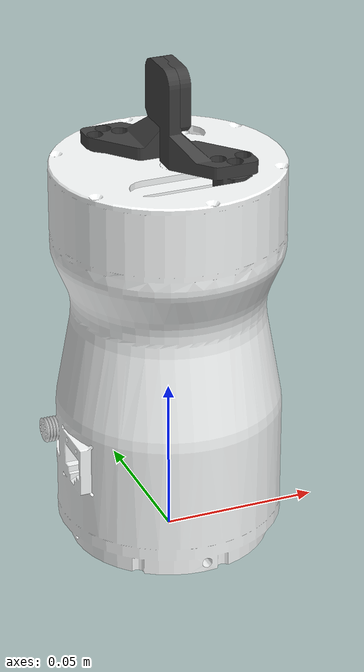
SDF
<sdf version='1.9'>
  <model name='delto_description'>
    <link name='delto_base_link'>
      <inertial>
        <pose>-0.000297512898704039 0.0601358449140221 0.000405289272635231 0 0 0</pose>
        <mass>0.14811829237101701</mass>
        <inertia>
          <ixx>0.000127380225676606</ixx>
          <ixy>2.4503269576101199e-06</ixy>
          <ixz>-4.42797188296029e-07</ixz>
          <iyy>0.00013424939645262601</iyy>
          <iyz>-1.2500531830166299e-07</iyz>
          <izz>0.00012653013005572801</izz>
        </inertia>
      </inertial>
      <collision name='delto_base_link_collision'>
        <pose>0 0 0 0 0 0</pose>
        <geometry>
          <mesh>
            <scale>1 1 1</scale>
            <uri>model://delto_description/meshes/DG2F/delto_base_link.stl</uri>
          </mesh>
        </geometry>
      </collision>
      <visual name='delto_base_link_visual'>
        <pose>0 0 0 0 0 0</pose>
        <geometry>
          <mesh>
            <scale>1 1 1</scale>
            <uri>model://delto_description/meshes/DG2F/delto_base_link.dae</uri>
          </mesh>
        </geometry>
        <material>
          <diffuse>0.990196 1 1 1</diffuse>
          <ambient>0.990196 1 1 1</ambient>
        </material>
      </visual>
    </link>
    <joint name='Distance' type='prismatic'>
      <pose relative_to='delto_base_link'>0 0 0.113 1.5708 0 3.141588307179587</pose>
      <parent>delto_base_link</parent>
      <child>TIP1</child>
      <axis>
        <xyz>-1 0 0</xyz>
        <limit>
          <lower>0</lower>
          <upper>0.025000000000000001</upper>
          <effort>1000</effort>
          <velocity>0.5</velocity>
        </limit>
        <dynamics>
          <spring_reference>0</spring_reference>
          <spring_stiffness>0</spring_stiffness>
        </dynamics>
      </axis>
    </joint>
    <link name='TIP1'>
      <pose relative_to='Distance'>0 0 0 0 0 0</pose>
      <inertial>
        <pose>-0.018892 0.020144 0.008141499999999999 0 0 0</pose>
        <mass>0.0050620999999999999</mass>
        <inertia>
          <ixx>5.5156e-07</ixx>
          <ixy>1.1032e-07</ixy>
          <ixz>-8.5307999999999999e-08</ixz>
          <iyy>3.9644999999999998e-07</iyy>
          <iyz>1.1084000000000001e-07</iyz>
          <izz>4.9987999999999995e-07</izz>
        </inertia>
      </inertial>
      <collision name='TIP1_collision'>
        <pose>0.025 0 0 0 0 0</pose>
        <geometry>
          <mesh>
            <scale>1 1 1</scale>
            <uri>model://delto_description/meshes/DG2F/TIP.stl</uri>
          </mesh>
        </geometry>
      </collision>
      <visual name='TIP1_visual'>
        <pose>0.025 0 0 0 0 0</pose>
        <geometry>
          <mesh>
            <scale>1 1 1</scale>
            <uri>model://delto_description/meshes/DG2F/TIP.stl</uri>
          </mesh>
        </geometry>
        <material>
          <diffuse>0.245 0.245 0.245 1</diffuse>
          <ambient>0.245 0.245 0.245 1</ambient>
        </material>
      </visual>
    </link>
    <joint name='JOINT2' type='prismatic'>
      <pose relative_to='delto_base_link'>0 0 0.113 1.5708 0 0.0070478</pose>
      <parent>delto_base_link</parent>
      <child>TIP2</child>
      <axis>
        <xyz>-1 0 0</xyz>
        <limit>
          <lower>0</lower>
          <upper>0.025000000000000001</upper>
          <effort>1000</effort>
          <velocity>0.5</velocity>
        </limit>
        <dynamics>
          <spring_reference>0</spring_reference>
          <spring_stiffness>0</spring_stiffness>
        </dynamics>
      </axis>
    </joint>
    <link name='TIP2'>
      <pose relative_to='JOINT2'>0 0 0 0 0 0</pose>
      <inertial>
        <pose>-0.018833 0.020144 0.008141499999999999 0 0 0</pose>
        <mass>0.0050620999999999999</mass>
        <inertia>
          <ixx>5.5156e-07</ixx>
          <ixy>1.1032e-07</ixy>
          <ixz>-8.5307999999999999e-08</ixz>
          <iyy>3.9644999999999998e-07</iyy>
          <iyz>1.1084000000000001e-07</iyz>
          <izz>4.9987999999999995e-07</izz>
        </inertia>
      </inertial>
      <collision name='TIP2_collision'>
        <pose>0.025 0 0 0 0 0</pose>
        <geometry>
          <mesh>
            <scale>1 1 1</scale>
            <uri>model://delto_description/meshes/DG2F/TIP.stl</uri>
          </mesh>
        </geometry>
      </collision>
      <visual name='TIP2_visual'>
        <pose>0.025 0 0 0 0 0</pose>
        <geometry>
          <mesh>
            <scale>1 1 1</scale>
            <uri>model://delto_description/meshes/DG2F/TIP.stl</uri>
          </mesh>
        </geometry>
        <material>
          <diffuse>0.245 0.245 0.245 1</diffuse>
          <ambient>0.245 0.245 0.245 1</ambient>
        </material>
      </visual>
    </link>
  </model>
</sdf>
